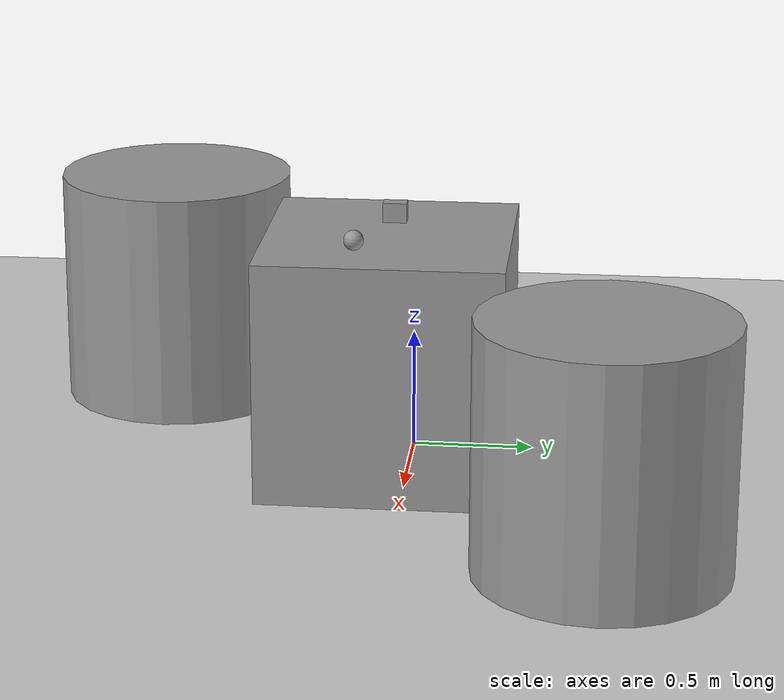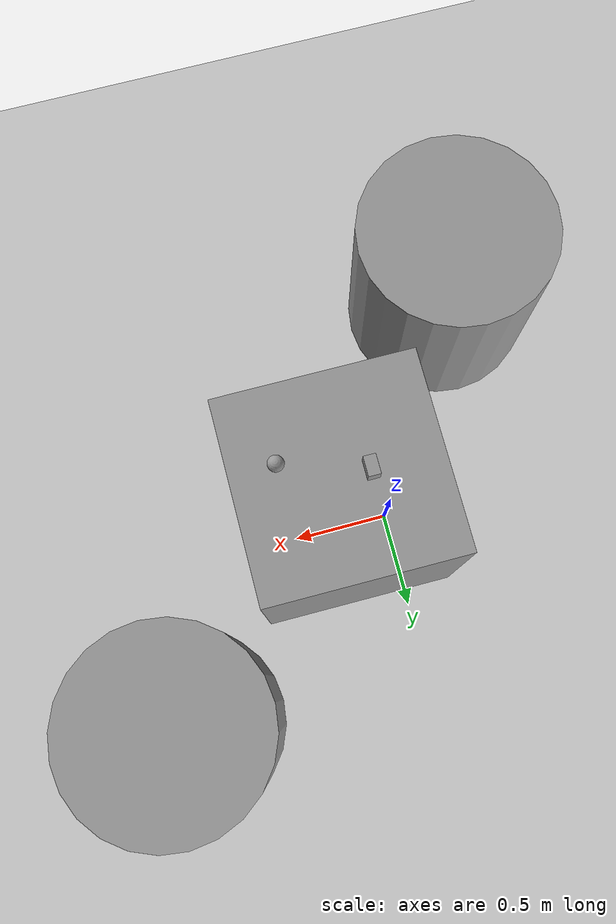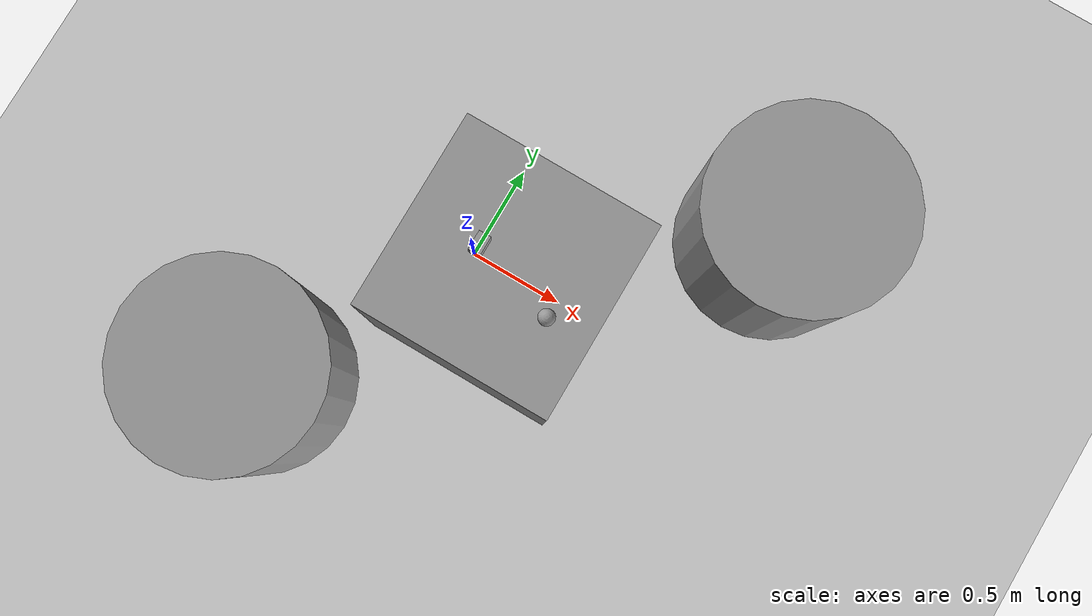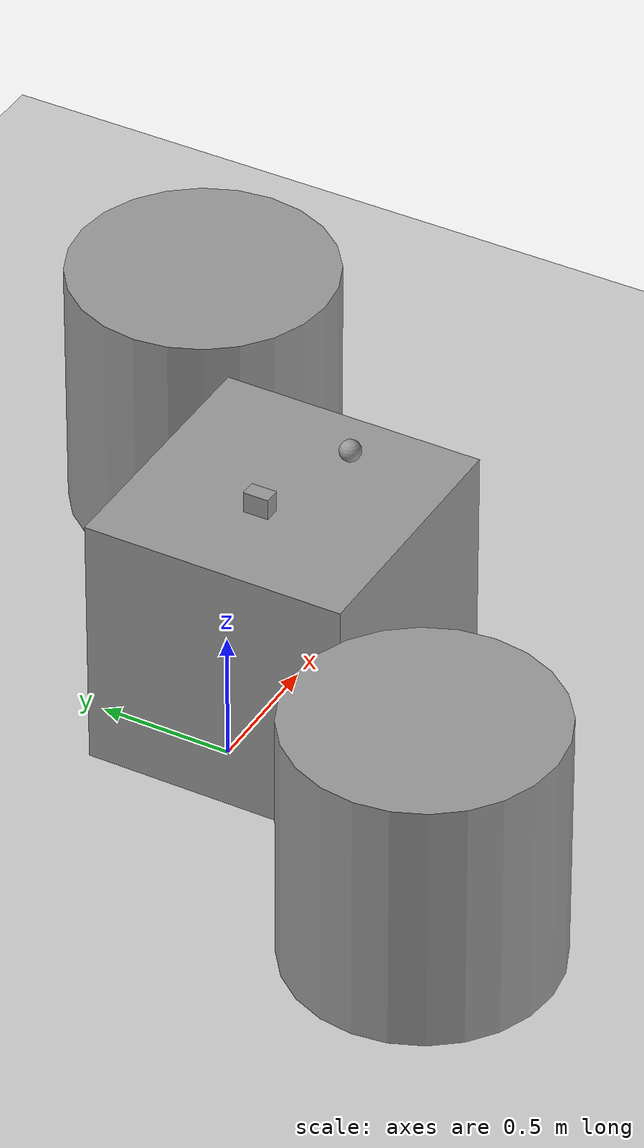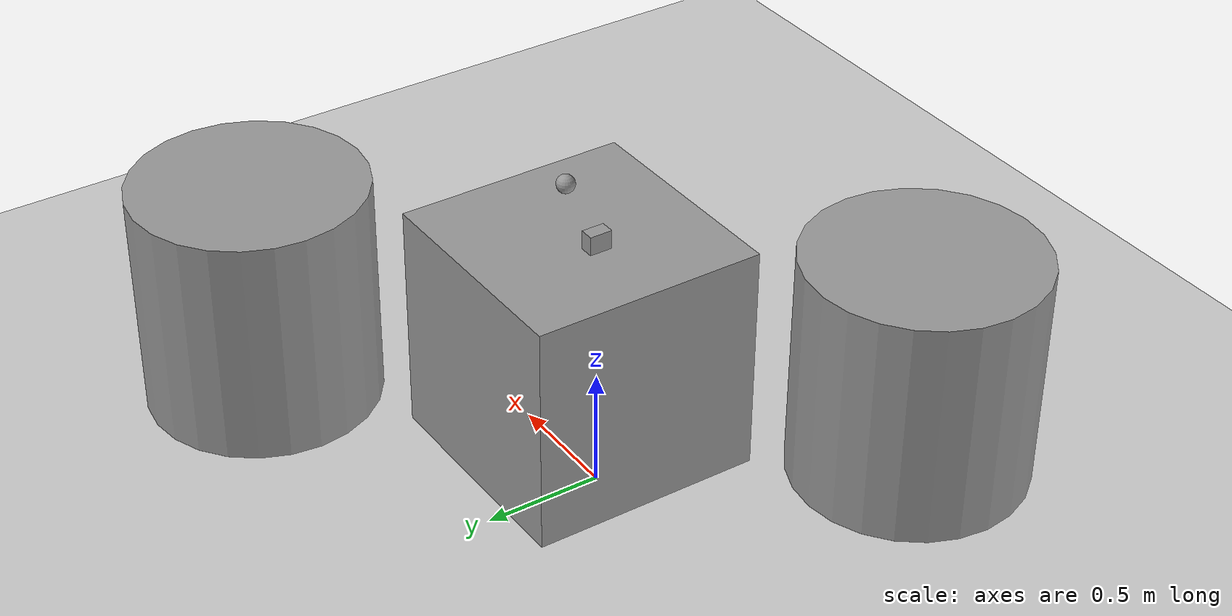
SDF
<sdf version="1.7">
 <world name="default">
  <light name="sun" type="directional">
   <pose>0 0 10 0 -0 0</pose>
   <diffuse>0.8 0.8 0.8 1</diffuse>
   <specular>0.2 0.2 0.2 1</specular>
   <attenuation>
    <range>1000</range>
    <constant>0.9</constant>
    <linear>0.01</linear>
    <quadratic>0.001</quadratic>
   </attenuation>
   <direction>-0.5 0.1 -0.9</direction>
   <spot><inner_angle>0</inner_angle><outer_angle>0</outer_angle><falloff>0</falloff></spot>
  </light>
  <model name="ground_plane">
   <static>1</static>
   <link name="link">
    <collision name="collision">
     <geometry><plane><normal>0 0 1</normal><size>100 100</size></plane></geometry>
     <surface>
      <contact><collide_bitmask>65535</collide_bitmask></contact>
      <friction><ode><mu>100</mu><mu2>50</mu2></ode></friction>
     </surface>
    </collision>
    <visual name="visual">
     <cast_shadows>0</cast_shadows>
     <geometry><plane><normal>0 0 1</normal><size>100 100</size></plane></geometry>
     <material>
      <script><uri>file://media/materials/scripts/gazebo.material</uri><name>Gazebo/Grey</name></script>
     </material>
    </visual>
   </link>
  </model>
  <gravity>0 0 -9.8</gravity>
  <magnetic_field>6e-06 2.3e-05 -4.2e-05</magnetic_field>
  <atmosphere type="adiabatic"/>
  <physics type="ode">
   <max_step_size>0.001</max_step_size>
   <real_time_factor>1</real_time_factor>
   <real_time_update_rate>1000</real_time_update_rate>
  </physics>
  <scene><ambient>0.4 0.4 0.4 1</ambient><background>0.7 0.7 0.7 1</background><shadows>1</shadows></scene>
  <spherical_coordinates>
   <surface_model>EARTH_WGS84</surface_model>
   <latitude_deg>0</latitude_deg>
   <longitude_deg>0</longitude_deg>
   <elevation>0</elevation>
   <heading_deg>0</heading_deg>
  </spherical_coordinates>
  <model name="unit_cylinder">
   <pose>-0.61259 -1.10537 0.499998 3e-06 -4e-06 0</pose>
   <link name="link">
    <inertial>
     <mass>1</mass>
     <inertia><ixx>0.145833</ixx><ixy>0</ixy><ixz>0</ixz><iyy>0.145833</iyy><iyz>0</iyz><izz>0.125</izz></inertia>
    </inertial>
    <collision name="collision">
     <geometry><cylinder><radius>0.5</radius><length>1</length></cylinder></geometry>
    </collision>
    <visual name="visual">
     <geometry><cylinder><radius>0.5</radius><length>1</length></cylinder></geometry>
     <material>
      <script><name>Gazebo/Grey</name><uri>file://media/materials/scripts/gazebo.material</uri></script>
     </material>
    </visual>
   </link>
  </model>
  <model name="unit_box">
   <pose>0.251785 -0.083763 0.499995 1e-05 -0 0</pose>
   <link name="link">
    <inertial>
     <mass>1</mass>
     <inertia>
      <ixx>0.166667</ixx>
      <ixy>0</ixy>
      <ixz>0</ixz>
      <iyy>0.166667</iyy>
      <iyz>0</iyz>
      <izz>0.166667</izz>
     </inertia>
    </inertial>
    <collision name="collision"><geometry><box><size>1 1 1</size></box></geometry></collision>
    <visual name="visual">
     <geometry><box><size>1 1 1</size></box></geometry>
     <material>
      <script><name>Gazebo/Grey</name><uri>file://media/materials/scripts/gazebo.material</uri></script>
     </material>
    </visual>
   </link>
  </model>
  <model name="unit_cylinder_0">
   <pose>1.2867 0.822578 0.499993 -3e-06 -4e-06 -0</pose>
   <link name="link">
    <inertial>
     <mass>1</mass>
     <inertia><ixx>0.145833</ixx><ixy>0</ixy><ixz>0</ixz><iyy>0.145833</iyy><iyz>0</iyz><izz>0.125</izz></inertia>
    </inertial>
    <collision name="collision">
     <geometry><cylinder><radius>0.5</radius><length>1</length></cylinder></geometry>
    </collision>
    <visual name="visual">
     <geometry><cylinder><radius>0.5</radius><length>1</length></cylinder></geometry>
     <material>
      <script><name>Gazebo/Grey</name><uri>file://media/materials/scripts/gazebo.material</uri></script>
     </material>
    </visual>
   </link>
  </model>
  <model name="unit_box_0">
   <link name="link">
    <inertial>
     <mass>0.000472982</mass>
     <inertia>
      <ixx>6.30545e-07</ixx>
      <ixy>0</ixy>
      <ixz>0</ixz>
      <iyy>4.01928e-07</iyy>
      <iyz>0</iyz>
      <izz>5.13353e-07</izz>
     </inertia>
    </inertial>
    <pose>7.28366 -4.22015 0.584428 0 -0 0</pose>
    <visual name="visual">
     <geometry><box><size>0.0601 0.097017 0.08115</size></box></geometry>
     <material>
      <script><name>Gazebo/Grey</name><uri>file://media/materials/scripts/gazebo.material</uri></script>
      <shader type="pixel"/>
     </material>
    </visual>
    <collision name="collision">
     <geometry><box><size>0.0601 0.097017 0.08115</size></box></geometry>
     <surface>
      <friction>
       <ode><mu>1</mu><mu2>1</mu2><fdir1>0 0 0</fdir1><slip1>0</slip1><slip2>0</slip2></ode>
       <torsional>
        <coefficient>1</coefficient>
        <patch_radius>0</patch_radius>
        <surface_radius>0</surface_radius>
        <use_patch_radius>1</use_patch_radius>
        <ode><slip>0</slip></ode>
       </torsional>
      </friction>
      <bounce><restitution_coefficient>0</restitution_coefficient><threshold>1e+06</threshold></bounce>
      <contact>
       <collide_without_contact>0</collide_without_contact>
       <collide_without_contact_bitmask>1</collide_without_contact_bitmask>
       <collide_bitmask>1</collide_bitmask>
       <ode>
        <soft_cfm>0</soft_cfm>
        <soft_erp>0.2</soft_erp>
        <kp>1e+13</kp>
        <kd>1</kd>
        <max_vel>0.01</max_vel>
        <min_depth>0</min_depth>
       </ode>
       <bullet>
        <split_impulse>1</split_impulse>
        <split_impulse_penetration_threshold>-0.01</split_impulse_penetration_threshold>
        <soft_cfm>0</soft_cfm>
        <soft_erp>0.2</soft_erp>
        <kp>1e+13</kp>
        <kd>1</kd>
       </bullet>
      </contact>
     </surface>
    </collision>
   </link>
   <static>0</static>
   <pose>-7.17417 4.14767 0.469502 0 -0 0</pose>
  </model>
  <model name="unit_sphere">
   <link name="link">
    <inertial>
     <mass>0.0101021</mass>
     <inertia>
      <ixx>4.72084e-05</ixx>
      <ixy>0</ixy>
      <ixz>0</ixz>
      <iyy>4.72084e-05</iyy>
      <iyz>0</iyz>
      <izz>4.72084e-05</izz>
     </inertia>
    </inertial>
    <visual name="visual">
     <geometry><sphere><radius>0.0401474</radius></sphere></geometry>
     <material>
      <script><name>Gazebo/Grey</name><uri>file://media/materials/scripts/gazebo.material</uri></script>
      <shader type="pixel"/>
     </material>
    </visual>
    <collision name="collision">
     <geometry><sphere><radius>0.0401474</radius></sphere></geometry>
     <surface>
      <friction>
       <ode><mu>1</mu><mu2>1</mu2><fdir1>0 0 0</fdir1><slip1>0</slip1><slip2>0</slip2></ode>
       <torsional>
        <coefficient>1</coefficient>
        <patch_radius>0</patch_radius>
        <surface_radius>0</surface_radius>
        <use_patch_radius>1</use_patch_radius>
        <ode><slip>0</slip></ode>
       </torsional>
      </friction>
      <bounce><restitution_coefficient>0</restitution_coefficient><threshold>1e+06</threshold></bounce>
      <contact>
       <collide_without_contact>0</collide_without_contact>
       <collide_without_contact_bitmask>1</collide_without_contact_bitmask>
       <collide_bitmask>1</collide_bitmask>
       <ode>
        <soft_cfm>0</soft_cfm>
        <soft_erp>0.2</soft_erp>
        <kp>1e+13</kp>
        <kd>1</kd>
        <max_vel>0.01</max_vel>
        <min_depth>0</min_depth>
       </ode>
       <bullet>
        <split_impulse>1</split_impulse>
        <split_impulse_penetration_threshold>-0.01</split_impulse_penetration_threshold>
        <soft_cfm>0</soft_cfm>
        <soft_erp>0.2</soft_erp>
        <kp>1e+13</kp>
        <kd>1</kd>
       </bullet>
      </contact>
     </surface>
    </collision>
   </link>
   <static>0</static>
   <pose>0.523128 -0.198589 1.04839 0 -0 0</pose>
  </model>
 </world>
</sdf>
